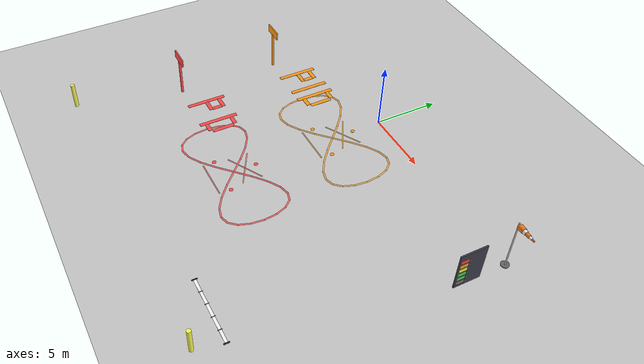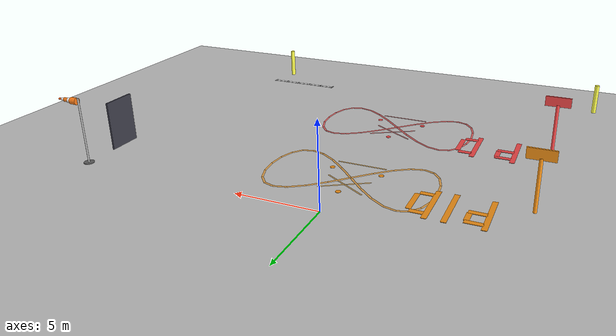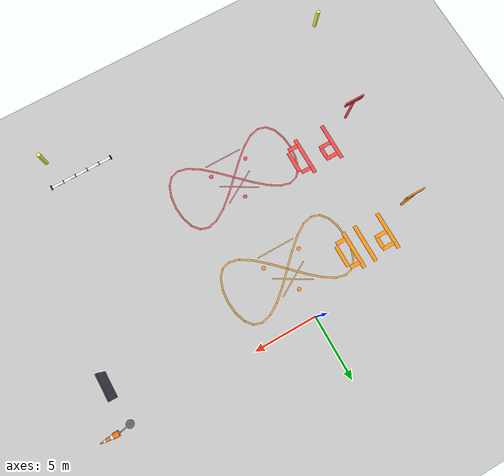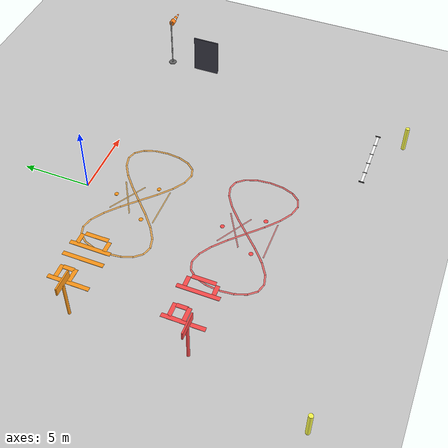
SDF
<sdf version="1.6">
 <world name="professional_formation_arena">
  <include><uri>model://arena_ground</uri></include>
  <model name="wind_indicator">
   <static>false</static>
   <pose>15 0 0 0 0 0</pose>
   <link name="base">
    <inertial>
     <mass>100</mass>
     <inertia><ixx>100</ixx><iyy>100</iyy><izz>100</izz><ixy>0</ixy><ixz>0</ixz><iyz>0</iyz></inertia>
    </inertial>
    <visual name="pole">
     <pose>0 0 2 0 0 0</pose>
     <geometry><cylinder><radius>0.05</radius><length>4.0</length></cylinder></geometry>
     <material><ambient>0.6 0.6 0.6 1</ambient><diffuse>0.7 0.7 0.7 1</diffuse></material>
    </visual>
    <visual name="base_plate">
     <pose>0 0 0.025 0 0 0</pose>
     <geometry><cylinder><radius>0.3</radius><length>0.05</length></cylinder></geometry>
     <material><ambient>0.3 0.3 0.3 1</ambient><diffuse>0.4 0.4 0.4 1</diffuse></material>
    </visual>
    <collision name="base_collision">
     <pose>0 0 0.025 0 0 0</pose>
     <geometry><cylinder><radius>0.3</radius><length>0.05</length></cylinder></geometry>
    </collision>
   </link>
   <link name="flag">
    <pose>0 0 3.8 0 0 0</pose>
    <inertial>
     <mass>0.5</mass>
     <inertia><ixx>0.01</ixx><iyy>0.1</iyy><izz>0.1</izz><ixy>0</ixy><ixz>0</ixz><iyz>0</iyz></inertia>
    </inertial>
    <visual name="sock_1">
     <pose>0.3 0 0 0 1.5708 0</pose>
     <geometry><cylinder><radius>0.2</radius><length>0.4</length></cylinder></geometry>
     <material><ambient>1 0.4 0 1</ambient><diffuse>1 0.5 0.1 1</diffuse></material>
    </visual>
    <visual name="sock_2">
     <pose>0.6 0 0 0 1.5708 0</pose>
     <geometry><cylinder><radius>0.15</radius><length>0.2</length></cylinder></geometry>
     <material><ambient>1 1 1 1</ambient><diffuse>1 1 1 1</diffuse></material>
    </visual>
    <visual name="sock_3">
     <pose>0.85 0 0 0 1.5708 0</pose>
     <geometry><cylinder><radius>0.12</radius><length>0.3</length></cylinder></geometry>
     <material><ambient>1 0.4 0 1</ambient><diffuse>1 0.5 0.1 1</diffuse></material>
    </visual>
    <visual name="sock_4">
     <pose>1.1 0 0 0 1.5708 0</pose>
     <geometry><cylinder><radius>0.08</radius><length>0.2</length></cylinder></geometry>
     <material><ambient>1 1 1 1</ambient><diffuse>1 1 1 1</diffuse></material>
    </visual>
    <visual name="sock_tip">
     <pose>1.3 0 0 0 1.5708 0</pose>
     <geometry><cylinder><radius>0.05</radius><length>0.2</length></cylinder></geometry>
     <material><ambient>1 0.3 0 1</ambient><diffuse>1 0.4 0.1 1</diffuse></material>
    </visual>
   </link>
   <joint name="flag_joint" type="revolute">
    <parent>base</parent>
    <child>flag</child>
    <axis>
     <xyz>0 0 1</xyz>
     <limit><lower>-3.15</lower><upper>3.15</upper></limit>
     <dynamics><damping>0.5</damping></dynamics>
    </axis>
   </joint>
   <plugin name="wind_flag_plugin" filename="libwind_flag_plugin.so">
    <joint_name>flag_joint</joint_name>
    <wind_topic>/wind/velocity</wind_topic>
    <update_rate>10</update_rate>
   </plugin>
  </model>
  <model name="traj_pd">
   <static>true</static>
   <link name="path">
    <visual name="seg0">
     <pose>0.488 -11.522 0.015 0 0 0.7757</pose>
     <geometry><box><size>1.366 0.12 0.015</size></box></geometry>
     <material><ambient>1 0.3 0.3 0.85</ambient><diffuse>1 0.4 0.4 0.85</diffuse></material>
    </visual>
    <visual name="seg1">
     <pose>1.444 -10.638 0.015 0 0 0.7130</pose>
     <geometry><box><size>1.240 0.12 0.015</size></box></geometry>
     <material><ambient>1 0.3 0.3 0.85</ambient><diffuse>1 0.4 0.4 0.85</diffuse></material>
    </visual>
    <visual name="seg2">
     <pose>2.346 -9.961 0.015 0 0 0.5600</pose>
     <geometry><box><size>1.020 0.12 0.015</size></box></geometry>
     <material><ambient>1 0.3 0.3 0.85</ambient><diffuse>1 0.4 0.4 0.85</diffuse></material>
    </visual>
    <visual name="seg3">
     <pose>3.157 -9.595 0.015 0 0 0.2461</pose>
     <geometry><box><size>0.781 0.12 0.015</size></box></geometry>
     <material><ambient>1 0.3 0.3 0.85</ambient><diffuse>1 0.4 0.4 0.85</diffuse></material>
    </visual>
    <visual name="seg4">
     <pose>3.846 -9.595 0.015 0 0 -0.2970</pose>
     <geometry><box><size>0.650 0.12 0.015</size></box></geometry>
     <material><ambient>1 0.3 0.3 0.85</ambient><diffuse>1 0.4 0.4 0.85</diffuse></material>
    </visual>
    <visual name="seg5">
     <pose>4.388 -9.961 0.015 0 0 -0.8648</pose>
     <geometry><box><size>0.712 0.12 0.015</size></box></geometry>
     <material><ambient>1 0.3 0.3 0.85</ambient><diffuse>1 0.4 0.4 0.85</diffuse></material>
    </visual>
    <visual name="seg6">
     <pose>4.762 -10.638 0.015 0 0 -1.2334</pose>
     <geometry><box><size>0.860 0.12 0.015</size></box></geometry>
     <material><ambient>1 0.3 0.3 0.85</ambient><diffuse>1 0.4 0.4 0.85</diffuse></material>
    </visual>
    <visual name="seg7">
     <pose>4.952 -11.522 0.015 0 0 -1.4707</pose>
     <geometry><box><size>0.962 0.12 0.015</size></box></geometry>
     <material><ambient>1 0.3 0.3 0.85</ambient><diffuse>1 0.4 0.4 0.85</diffuse></material>
    </visual>
    <visual name="seg8">
     <pose>4.952 -12.478 0.015 0 0 -1.6709</pose>
     <geometry><box><size>0.962 0.12 0.015</size></box></geometry>
     <material><ambient>1 0.3 0.3 0.85</ambient><diffuse>1 0.4 0.4 0.85</diffuse></material>
    </visual>
    <visual name="seg9">
     <pose>4.762 -13.362 0.015 0 0 -1.9082</pose>
     <geometry><box><size>0.860 0.12 0.015</size></box></geometry>
     <material><ambient>1 0.3 0.3 0.85</ambient><diffuse>1 0.4 0.4 0.85</diffuse></material>
    </visual>
    <visual name="seg10">
     <pose>4.388 -14.039 0.015 0 0 -2.2768</pose>
     <geometry><box><size>0.712 0.12 0.015</size></box></geometry>
     <material><ambient>1 0.3 0.3 0.85</ambient><diffuse>1 0.4 0.4 0.85</diffuse></material>
    </visual>
    <visual name="seg11">
     <pose>3.846 -14.405 0.015 0 0 -2.8446</pose>
     <geometry><box><size>0.650 0.12 0.015</size></box></geometry>
     <material><ambient>1 0.3 0.3 0.85</ambient><diffuse>1 0.4 0.4 0.85</diffuse></material>
    </visual>
    <visual name="seg12">
     <pose>3.157 -14.405 0.015 0 0 2.8955</pose>
     <geometry><box><size>0.781 0.12 0.015</size></box></geometry>
     <material><ambient>1 0.3 0.3 0.85</ambient><diffuse>1 0.4 0.4 0.85</diffuse></material>
    </visual>
    <visual name="seg13">
     <pose>2.346 -14.039 0.015 0 0 2.5816</pose>
     <geometry><box><size>1.020 0.12 0.015</size></box></geometry>
     <material><ambient>1 0.3 0.3 0.85</ambient><diffuse>1 0.4 0.4 0.85</diffuse></material>
    </visual>
    <visual name="seg14">
     <pose>1.444 -13.362 0.015 0 0 2.4286</pose>
     <geometry><box><size>1.240 0.12 0.015</size></box></geometry>
     <material><ambient>1 0.3 0.3 0.85</ambient><diffuse>1 0.4 0.4 0.85</diffuse></material>
    </visual>
    <visual name="seg15">
     <pose>0.488 -12.478 0.015 0 0 2.3659</pose>
     <geometry><box><size>1.366 0.12 0.015</size></box></geometry>
     <material><ambient>1 0.3 0.3 0.85</ambient><diffuse>1 0.4 0.4 0.85</diffuse></material>
    </visual>
    <visual name="seg16">
     <pose>-0.488 -11.522 0.015 0 0 2.3659</pose>
     <geometry><box><size>1.366 0.12 0.015</size></box></geometry>
     <material><ambient>1 0.3 0.3 0.85</ambient><diffuse>1 0.4 0.4 0.85</diffuse></material>
    </visual>
    <visual name="seg17">
     <pose>-1.444 -10.638 0.015 0 0 2.4286</pose>
     <geometry><box><size>1.240 0.12 0.015</size></box></geometry>
     <material><ambient>1 0.3 0.3 0.85</ambient><diffuse>1 0.4 0.4 0.85</diffuse></material>
    </visual>
    <visual name="seg18">
     <pose>-2.346 -9.961 0.015 0 0 2.5816</pose>
     <geometry><box><size>1.020 0.12 0.015</size></box></geometry>
     <material><ambient>1 0.3 0.3 0.85</ambient><diffuse>1 0.4 0.4 0.85</diffuse></material>
    </visual>
    <visual name="seg19">
     <pose>-3.157 -9.595 0.015 0 0 2.8955</pose>
     <geometry><box><size>0.781 0.12 0.015</size></box></geometry>
     <material><ambient>1 0.3 0.3 0.85</ambient><diffuse>1 0.4 0.4 0.85</diffuse></material>
    </visual>
    <visual name="seg20">
     <pose>-3.846 -9.595 0.015 0 0 -2.8446</pose>
     <geometry><box><size>0.650 0.12 0.015</size></box></geometry>
     <material><ambient>1 0.3 0.3 0.85</ambient><diffuse>1 0.4 0.4 0.85</diffuse></material>
    </visual>
    <visual name="seg21">
     <pose>-4.388 -9.961 0.015 0 0 -2.2768</pose>
     <geometry><box><size>0.712 0.12 0.015</size></box></geometry>
     <material><ambient>1 0.3 0.3 0.85</ambient><diffuse>1 0.4 0.4 0.85</diffuse></material>
    </visual>
    <visual name="seg22">
     <pose>-4.762 -10.638 0.015 0 0 -1.9082</pose>
     <geometry><box><size>0.860 0.12 0.015</size></box></geometry>
     <material><ambient>1 0.3 0.3 0.85</ambient><diffuse>1 0.4 0.4 0.85</diffuse></material>
    </visual>
    <visual name="seg23">
     <pose>-4.952 -11.522 0.015 0 0 -1.6709</pose>
     <geometry><box><size>0.962 0.12 0.015</size></box></geometry>
     <material><ambient>1 0.3 0.3 0.85</ambient><diffuse>1 0.4 0.4 0.85</diffuse></material>
    </visual>
    <visual name="seg24">
     <pose>-4.952 -12.478 0.015 0 0 -1.4707</pose>
     <geometry><box><size>0.962 0.12 0.015</size></box></geometry>
     <material><ambient>1 0.3 0.3 0.85</ambient><diffuse>1 0.4 0.4 0.85</diffuse></material>
    </visual>
    <visual name="seg25">
     <pose>-4.762 -13.362 0.015 0 0 -1.2334</pose>
     <geometry><box><size>0.860 0.12 0.015</size></box></geometry>
     <material><ambient>1 0.3 0.3 0.85</ambient><diffuse>1 0.4 0.4 0.85</diffuse></material>
    </visual>
    <visual name="seg26">
     <pose>-4.388 -14.039 0.015 0 0 -0.8648</pose>
     <geometry><box><size>0.712 0.12 0.015</size></box></geometry>
     <material><ambient>1 0.3 0.3 0.85</ambient><diffuse>1 0.4 0.4 0.85</diffuse></material>
    </visual>
    <visual name="seg27">
     <pose>-3.846 -14.405 0.015 0 0 -0.2970</pose>
     <geometry><box><size>0.650 0.12 0.015</size></box></geometry>
     <material><ambient>1 0.3 0.3 0.85</ambient><diffuse>1 0.4 0.4 0.85</diffuse></material>
    </visual>
    <visual name="seg28">
     <pose>-3.157 -14.405 0.015 0 0 0.2461</pose>
     <geometry><box><size>0.781 0.12 0.015</size></box></geometry>
     <material><ambient>1 0.3 0.3 0.85</ambient><diffuse>1 0.4 0.4 0.85</diffuse></material>
    </visual>
    <visual name="seg29">
     <pose>-2.346 -14.039 0.015 0 0 0.5600</pose>
     <geometry><box><size>1.020 0.12 0.015</size></box></geometry>
     <material><ambient>1 0.3 0.3 0.85</ambient><diffuse>1 0.4 0.4 0.85</diffuse></material>
    </visual>
    <visual name="seg30">
     <pose>-1.444 -13.362 0.015 0 0 0.7130</pose>
     <geometry><box><size>1.240 0.12 0.015</size></box></geometry>
     <material><ambient>1 0.3 0.3 0.85</ambient><diffuse>1 0.4 0.4 0.85</diffuse></material>
    </visual>
    <visual name="seg31">
     <pose>-0.488 -12.478 0.015 0 0 0.7757</pose>
     <geometry><box><size>1.366 0.12 0.015</size></box></geometry>
     <material><ambient>1 0.3 0.3 0.85</ambient><diffuse>1 0.4 0.4 0.85</diffuse></material>
    </visual>
   </link>
  </model>
  <model name="traj_pid">
   <static>true</static>
   <link name="path">
    <visual name="seg0">
     <pose>0.488 -3.522 0.015 0 0 0.7757</pose>
     <geometry><box><size>1.366 0.12 0.015</size></box></geometry>
     <material><ambient>1 0.6 0.2 0.85</ambient><diffuse>1 0.7 0.3 0.85</diffuse></material>
    </visual>
    <visual name="seg1">
     <pose>1.444 -2.638 0.015 0 0 0.7130</pose>
     <geometry><box><size>1.240 0.12 0.015</size></box></geometry>
     <material><ambient>1 0.6 0.2 0.85</ambient><diffuse>1 0.7 0.3 0.85</diffuse></material>
    </visual>
    <visual name="seg2">
     <pose>2.346 -1.961 0.015 0 0 0.5600</pose>
     <geometry><box><size>1.020 0.12 0.015</size></box></geometry>
     <material><ambient>1 0.6 0.2 0.85</ambient><diffuse>1 0.7 0.3 0.85</diffuse></material>
    </visual>
    <visual name="seg3">
     <pose>3.157 -1.595 0.015 0 0 0.2461</pose>
     <geometry><box><size>0.781 0.12 0.015</size></box></geometry>
     <material><ambient>1 0.6 0.2 0.85</ambient><diffuse>1 0.7 0.3 0.85</diffuse></material>
    </visual>
    <visual name="seg4">
     <pose>3.846 -1.595 0.015 0 0 -0.2970</pose>
     <geometry><box><size>0.650 0.12 0.015</size></box></geometry>
     <material><ambient>1 0.6 0.2 0.85</ambient><diffuse>1 0.7 0.3 0.85</diffuse></material>
    </visual>
    <visual name="seg5">
     <pose>4.388 -1.961 0.015 0 0 -0.8648</pose>
     <geometry><box><size>0.712 0.12 0.015</size></box></geometry>
     <material><ambient>1 0.6 0.2 0.85</ambient><diffuse>1 0.7 0.3 0.85</diffuse></material>
    </visual>
    <visual name="seg6">
     <pose>4.762 -2.638 0.015 0 0 -1.2334</pose>
     <geometry><box><size>0.860 0.12 0.015</size></box></geometry>
     <material><ambient>1 0.6 0.2 0.85</ambient><diffuse>1 0.7 0.3 0.85</diffuse></material>
    </visual>
    <visual name="seg7">
     <pose>4.952 -3.522 0.015 0 0 -1.4707</pose>
     <geometry><box><size>0.962 0.12 0.015</size></box></geometry>
     <material><ambient>1 0.6 0.2 0.85</ambient><diffuse>1 0.7 0.3 0.85</diffuse></material>
    </visual>
    <visual name="seg8">
     <pose>4.952 -4.478 0.015 0 0 -1.6709</pose>
     <geometry><box><size>0.962 0.12 0.015</size></box></geometry>
     <material><ambient>1 0.6 0.2 0.85</ambient><diffuse>1 0.7 0.3 0.85</diffuse></material>
    </visual>
    <visual name="seg9">
     <pose>4.762 -5.362 0.015 0 0 -1.9082</pose>
     <geometry><box><size>0.860 0.12 0.015</size></box></geometry>
     <material><ambient>1 0.6 0.2 0.85</ambient><diffuse>1 0.7 0.3 0.85</diffuse></material>
    </visual>
    <visual name="seg10">
     <pose>4.388 -6.039 0.015 0 0 -2.2768</pose>
     <geometry><box><size>0.712 0.12 0.015</size></box></geometry>
     <material><ambient>1 0.6 0.2 0.85</ambient><diffuse>1 0.7 0.3 0.85</diffuse></material>
    </visual>
    <visual name="seg11">
     <pose>3.846 -6.405 0.015 0 0 -2.8446</pose>
     <geometry><box><size>0.650 0.12 0.015</size></box></geometry>
     <material><ambient>1 0.6 0.2 0.85</ambient><diffuse>1 0.7 0.3 0.85</diffuse></material>
    </visual>
    <visual name="seg12">
     <pose>3.157 -6.405 0.015 0 0 2.8955</pose>
     <geometry><box><size>0.781 0.12 0.015</size></box></geometry>
     <material><ambient>1 0.6 0.2 0.85</ambient><diffuse>1 0.7 0.3 0.85</diffuse></material>
    </visual>
    <visual name="seg13">
     <pose>2.346 -6.039 0.015 0 0 2.5816</pose>
     <geometry><box><size>1.020 0.12 0.015</size></box></geometry>
     <material><ambient>1 0.6 0.2 0.85</ambient><diffuse>1 0.7 0.3 0.85</diffuse></material>
    </visual>
    <visual name="seg14">
     <pose>1.444 -5.362 0.015 0 0 2.4286</pose>
     <geometry><box><size>1.240 0.12 0.015</size></box></geometry>
     <material><ambient>1 0.6 0.2 0.85</ambient><diffuse>1 0.7 0.3 0.85</diffuse></material>
    </visual>
    <visual name="seg15">
     <pose>0.488 -4.478 0.015 0 0 2.3659</pose>
     <geometry><box><size>1.366 0.12 0.015</size></box></geometry>
     <material><ambient>1 0.6 0.2 0.85</ambient><diffuse>1 0.7 0.3 0.85</diffuse></material>
    </visual>
    <visual name="seg16">
     <pose>-0.488 -3.522 0.015 0 0 2.3659</pose>
     <geometry><box><size>1.366 0.12 0.015</size></box></geometry>
     <material><ambient>1 0.6 0.2 0.85</ambient><diffuse>1 0.7 0.3 0.85</diffuse></material>
    </visual>
    <visual name="seg17">
     <pose>-1.444 -2.638 0.015 0 0 2.4286</pose>
     <geometry><box><size>1.240 0.12 0.015</size></box></geometry>
     <material><ambient>1 0.6 0.2 0.85</ambient><diffuse>1 0.7 0.3 0.85</diffuse></material>
    </visual>
    <visual name="seg18">
     <pose>-2.346 -1.961 0.015 0 0 2.5816</pose>
     <geometry><box><size>1.020 0.12 0.015</size></box></geometry>
     <material><ambient>1 0.6 0.2 0.85</ambient><diffuse>1 0.7 0.3 0.85</diffuse></material>
    </visual>
    <visual name="seg19">
     <pose>-3.157 -1.595 0.015 0 0 2.8955</pose>
     <geometry><box><size>0.781 0.12 0.015</size></box></geometry>
     <material><ambient>1 0.6 0.2 0.85</ambient><diffuse>1 0.7 0.3 0.85</diffuse></material>
    </visual>
    <visual name="seg20">
     <pose>-3.846 -1.595 0.015 0 0 -2.8446</pose>
     <geometry><box><size>0.650 0.12 0.015</size></box></geometry>
     <material><ambient>1 0.6 0.2 0.85</ambient><diffuse>1 0.7 0.3 0.85</diffuse></material>
    </visual>
    <visual name="seg21">
     <pose>-4.388 -1.961 0.015 0 0 -2.2768</pose>
     <geometry><box><size>0.712 0.12 0.015</size></box></geometry>
     <material><ambient>1 0.6 0.2 0.85</ambient><diffuse>1 0.7 0.3 0.85</diffuse></material>
    </visual>
    <visual name="seg22">
     <pose>-4.762 -2.638 0.015 0 0 -1.9082</pose>
     <geometry><box><size>0.860 0.12 0.015</size></box></geometry>
     <material><ambient>1 0.6 0.2 0.85</ambient><diffuse>1 0.7 0.3 0.85</diffuse></material>
    </visual>
    <visual name="seg23">
     <pose>-4.952 -3.522 0.015 0 0 -1.6709</pose>
     <geometry><box><size>0.962 0.12 0.015</size></box></geometry>
     <material><ambient>1 0.6 0.2 0.85</ambient><diffuse>1 0.7 0.3 0.85</diffuse></material>
    </visual>
    <visual name="seg24">
     <pose>-4.952 -4.478 0.015 0 0 -1.4707</pose>
     <geometry><box><size>0.962 0.12 0.015</size></box></geometry>
     <material><ambient>1 0.6 0.2 0.85</ambient><diffuse>1 0.7 0.3 0.85</diffuse></material>
    </visual>
    <visual name="seg25">
     <pose>-4.762 -5.362 0.015 0 0 -1.2334</pose>
     <geometry><box><size>0.860 0.12 0.015</size></box></geometry>
     <material><ambient>1 0.6 0.2 0.85</ambient><diffuse>1 0.7 0.3 0.85</diffuse></material>
    </visual>
    <visual name="seg26">
     <pose>-4.388 -6.039 0.015 0 0 -0.8648</pose>
     <geometry><box><size>0.712 0.12 0.015</size></box></geometry>
     <material><ambient>1 0.6 0.2 0.85</ambient><diffuse>1 0.7 0.3 0.85</diffuse></material>
    </visual>
    <visual name="seg27">
     <pose>-3.846 -6.405 0.015 0 0 -0.2970</pose>
     <geometry><box><size>0.650 0.12 0.015</size></box></geometry>
     <material><ambient>1 0.6 0.2 0.85</ambient><diffuse>1 0.7 0.3 0.85</diffuse></material>
    </visual>
    <visual name="seg28">
     <pose>-3.157 -6.405 0.015 0 0 0.2461</pose>
     <geometry><box><size>0.781 0.12 0.015</size></box></geometry>
     <material><ambient>1 0.6 0.2 0.85</ambient><diffuse>1 0.7 0.3 0.85</diffuse></material>
    </visual>
    <visual name="seg29">
     <pose>-2.346 -6.039 0.015 0 0 0.5600</pose>
     <geometry><box><size>1.020 0.12 0.015</size></box></geometry>
     <material><ambient>1 0.6 0.2 0.85</ambient><diffuse>1 0.7 0.3 0.85</diffuse></material>
    </visual>
    <visual name="seg30">
     <pose>-1.444 -5.362 0.015 0 0 0.7130</pose>
     <geometry><box><size>1.240 0.12 0.015</size></box></geometry>
     <material><ambient>1 0.6 0.2 0.85</ambient><diffuse>1 0.7 0.3 0.85</diffuse></material>
    </visual>
    <visual name="seg31">
     <pose>-0.488 -4.478 0.015 0 0 0.7757</pose>
     <geometry><box><size>1.366 0.12 0.015</size></box></geometry>
     <material><ambient>1 0.6 0.2 0.85</ambient><diffuse>1 0.7 0.3 0.85</diffuse></material>
    </visual>
   </link>
  </model>
  <model name="post_pd">
   <static>true</static>
   <pose>-10 -12 0 0 0 0</pose>
   <link name="link">
    <visual name="pole">
     <pose>0 0 1.5 0 0 0</pose>
     <geometry><cylinder><radius>0.1</radius><length>3.0</length></cylinder></geometry>
     <material><ambient>1 0.2 0.2 1</ambient><diffuse>1 0.3 0.3 1</diffuse></material>
    </visual>
    <visual name="sign">
     <pose>0 0 3.2 0 0 0</pose>
     <geometry><box><size>1.5 0.1 0.6</size></box></geometry>
     <material><ambient>1 0.2 0.2 1</ambient><diffuse>1 0.3 0.3 1</diffuse></material>
    </visual>
   </link>
  </model>
  <model name="post_pid">
   <static>true</static>
   <pose>-10 -4 0 0 0 0</pose>
   <link name="link">
    <visual name="pole">
     <pose>0 0 1.5 0 0 0</pose>
     <geometry><cylinder><radius>0.1</radius><length>3.0</length></cylinder></geometry>
     <material><ambient>1 0.5 0 1</ambient><diffuse>1 0.6 0.1 1</diffuse></material>
    </visual>
    <visual name="sign">
     <pose>0 0 3.2 0 0 0</pose>
     <geometry><box><size>1.5 0.1 0.6</size></box></geometry>
     <material><ambient>1 0.5 0 1</ambient><diffuse>1 0.6 0.1 1</diffuse></material>
    </visual>
   </link>
  </model>
  <model name="corner_sw">
   <static>true</static>
   <pose>-12 -20 0 0 0 0</pose>
   <link name="link">
    <visual name="v">
     <pose>0 0 1 0 0 0</pose>
     <geometry><cylinder><radius>0.15</radius><length>2.0</length></cylinder></geometry>
     <material><ambient>0.9 0.9 0.2 1</ambient><diffuse>1 1 0.3 1</diffuse></material>
    </visual>
   </link>
  </model>
  <model name="corner_se">
   <static>true</static>
   <pose>12 -20 0 0 0 0</pose>
   <link name="link">
    <visual name="v">
     <pose>0 0 1 0 0 0</pose>
     <geometry><cylinder><radius>0.15</radius><length>2.0</length></cylinder></geometry>
     <material><ambient>0.9 0.9 0.2 1</ambient><diffuse>1 1 0.3 1</diffuse></material>
    </visual>
   </link>
  </model>
  <model name="scale_bar">
   <static>true</static>
   <pose>10 -18 0 0 0 0</pose>
   <link name="link">
    <visual name="bar">
     <pose>0 0 0.02 0 0 0</pose>
     <geometry><box><size>5.0 0.2 0.02</size></box></geometry>
     <material><ambient>1 1 1 1</ambient><diffuse>1 1 1 1</diffuse></material>
    </visual>
    <visual name="mark_0">
     <pose>-2.5 0 0.03 0 0 0</pose>
     <geometry><box><size>0.1 0.4 0.02</size></box></geometry>
     <material><ambient>0 0 0 1</ambient><diffuse>0.1 0.1 0.1 1</diffuse></material>
    </visual>
    <visual name="mark_5">
     <pose>2.5 0 0.03 0 0 0</pose>
     <geometry><box><size>0.1 0.4 0.02</size></box></geometry>
     <material><ambient>0 0 0 1</ambient><diffuse>0.1 0.1 0.1 1</diffuse></material>
    </visual>
    <visual name="mark_1">
     <pose>-1.5 0 0.025 0 0 0</pose>
     <geometry><box><size>0.05 0.3 0.02</size></box></geometry>
     <material><ambient>0.3 0.3 0.3 1</ambient><diffuse>0.3 0.3 0.3 1</diffuse></material>
    </visual>
    <visual name="mark_2">
     <pose>-0.5 0 0.025 0 0 0</pose>
     <geometry><box><size>0.05 0.3 0.02</size></box></geometry>
     <material><ambient>0.3 0.3 0.3 1</ambient><diffuse>0.3 0.3 0.3 1</diffuse></material>
    </visual>
    <visual name="mark_3">
     <pose>0.5 0 0.025 0 0 0</pose>
     <geometry><box><size>0.05 0.3 0.02</size></box></geometry>
     <material><ambient>0.3 0.3 0.3 1</ambient><diffuse>0.3 0.3 0.3 1</diffuse></material>
    </visual>
    <visual name="mark_4">
     <pose>1.5 0 0.025 0 0 0</pose>
     <geometry><box><size>0.05 0.3 0.02</size></box></geometry>
     <material><ambient>0.3 0.3 0.3 1</ambient><diffuse>0.3 0.3 0.3 1</diffuse></material>
    </visual>
   </link>
  </model>
  <model name="label_ground_pd">
   <static>true</static>
   <pose>-8 -12 0.02 0 0 0</pose>
   <link name="link">
    <visual name="p1">
     <pose>0 1.2 0 0 0 0</pose>
     <geometry><box><size>0.3 3.0 0.03</size></box></geometry>
     <material><ambient>1 0.2 0.2 1</ambient><diffuse>1 0.3 0.3 1</diffuse></material>
    </visual>
    <visual name="p2">
     <pose>0.6 2.2 0 0 0 0</pose>
     <geometry><box><size>1.0 0.3 0.03</size></box></geometry>
     <material><ambient>1 0.2 0.2 1</ambient><diffuse>1 0.3 0.3 1</diffuse></material>
    </visual>
    <visual name="p3">
     <pose>1.0 1.7 0 0 0 0</pose>
     <geometry><box><size>0.3 0.8 0.03</size></box></geometry>
     <material><ambient>1 0.2 0.2 1</ambient><diffuse>1 0.3 0.3 1</diffuse></material>
    </visual>
    <visual name="p4">
     <pose>0.6 1.2 0 0 0 0</pose>
     <geometry><box><size>1.0 0.3 0.03</size></box></geometry>
     <material><ambient>1 0.2 0.2 1</ambient><diffuse>1 0.3 0.3 1</diffuse></material>
    </visual>
    <visual name="d1">
     <pose>2.4 1.2 0 0 0 0</pose>
     <geometry><box><size>0.3 3.0 0.03</size></box></geometry>
     <material><ambient>1 0.2 0.2 1</ambient><diffuse>1 0.3 0.3 1</diffuse></material>
    </visual>
    <visual name="d2">
     <pose>2.9 2.2 0 0 0 0</pose>
     <geometry><box><size>0.8 0.3 0.03</size></box></geometry>
     <material><ambient>1 0.2 0.2 1</ambient><diffuse>1 0.3 0.3 1</diffuse></material>
    </visual>
    <visual name="d3">
     <pose>2.9 0.2 0 0 0 0</pose>
     <geometry><box><size>0.8 0.3 0.03</size></box></geometry>
     <material><ambient>1 0.2 0.2 1</ambient><diffuse>1 0.3 0.3 1</diffuse></material>
    </visual>
    <visual name="d4">
     <pose>3.4 1.2 0 0 0 0</pose>
     <geometry><box><size>0.3 1.7 0.03</size></box></geometry>
     <material><ambient>1 0.2 0.2 1</ambient><diffuse>1 0.3 0.3 1</diffuse></material>
    </visual>
   </link>
  </model>
  <model name="label_ground_pid">
   <static>true</static>
   <pose>-8 -4 0.02 0 0 0</pose>
   <link name="link">
    <visual name="p1">
     <pose>0 1.2 0 0 0 0</pose>
     <geometry><box><size>0.3 3.0 0.03</size></box></geometry>
     <material><ambient>1 0.5 0 1</ambient><diffuse>1 0.6 0.1 1</diffuse></material>
    </visual>
    <visual name="p2">
     <pose>0.6 2.2 0 0 0 0</pose>
     <geometry><box><size>1.0 0.3 0.03</size></box></geometry>
     <material><ambient>1 0.5 0 1</ambient><diffuse>1 0.6 0.1 1</diffuse></material>
    </visual>
    <visual name="p3">
     <pose>1.0 1.7 0 0 0 0</pose>
     <geometry><box><size>0.3 0.8 0.03</size></box></geometry>
     <material><ambient>1 0.5 0 1</ambient><diffuse>1 0.6 0.1 1</diffuse></material>
    </visual>
    <visual name="p4">
     <pose>0.6 1.2 0 0 0 0</pose>
     <geometry><box><size>1.0 0.3 0.03</size></box></geometry>
     <material><ambient>1 0.5 0 1</ambient><diffuse>1 0.6 0.1 1</diffuse></material>
    </visual>
    <visual name="i1">
     <pose>2.0 1.2 0 0 0 0</pose>
     <geometry><box><size>0.3 3.0 0.03</size></box></geometry>
     <material><ambient>1 0.5 0 1</ambient><diffuse>1 0.6 0.1 1</diffuse></material>
    </visual>
    <visual name="d1">
     <pose>3.0 1.2 0 0 0 0</pose>
     <geometry><box><size>0.3 3.0 0.03</size></box></geometry>
     <material><ambient>1 0.5 0 1</ambient><diffuse>1 0.6 0.1 1</diffuse></material>
    </visual>
    <visual name="d2">
     <pose>3.5 2.2 0 0 0 0</pose>
     <geometry><box><size>0.8 0.3 0.03</size></box></geometry>
     <material><ambient>1 0.5 0 1</ambient><diffuse>1 0.6 0.1 1</diffuse></material>
    </visual>
    <visual name="d3">
     <pose>3.5 0.2 0 0 0 0</pose>
     <geometry><box><size>0.8 0.3 0.03</size></box></geometry>
     <material><ambient>1 0.5 0 1</ambient><diffuse>1 0.6 0.1 1</diffuse></material>
    </visual>
    <visual name="d4">
     <pose>4.0 1.2 0 0 0 0</pose>
     <geometry><box><size>0.3 1.7 0.03</size></box></geometry>
     <material><ambient>1 0.5 0 1</ambient><diffuse>1 0.6 0.1 1</diffuse></material>
    </visual>
   </link>
  </model>
  <model name="formation_outline_pd">
   <static>true</static>
   <pose>0 -12 0.012 0 0 0</pose>
   <link name="link">
    <visual name="edge1">
     <pose>0 0.87 0 0 0 0.524</pose>
     <geometry><box><size>3.0 0.08 0.01</size></box></geometry>
     <material><ambient>1 0.3 0.3 0.6</ambient><diffuse>1 0.4 0.4 0.6</diffuse></material>
    </visual>
    <visual name="edge2">
     <pose>0 0.87 0 0 0 -0.524</pose>
     <geometry><box><size>3.0 0.08 0.01</size></box></geometry>
     <material><ambient>1 0.3 0.3 0.6</ambient><diffuse>1 0.4 0.4 0.6</diffuse></material>
    </visual>
    <visual name="edge3">
     <pose>0 -1.73 0 0 0 0</pose>
     <geometry><box><size>3.0 0.08 0.01</size></box></geometry>
     <material><ambient>1 0.3 0.3 0.6</ambient><diffuse>1 0.4 0.4 0.6</diffuse></material>
    </visual>
    <visual name="v1">
     <pose>0 1.73 0 0 0 0</pose>
     <geometry><cylinder><radius>0.15</radius><length>0.02</length></cylinder></geometry>
     <material><ambient>1 0.2 0.2 1</ambient><diffuse>1 0.3 0.3 1</diffuse></material>
    </visual>
    <visual name="v2">
     <pose>-1.5 -0.87 0 0 0 0</pose>
     <geometry><cylinder><radius>0.15</radius><length>0.02</length></cylinder></geometry>
     <material><ambient>1 0.2 0.2 1</ambient><diffuse>1 0.3 0.3 1</diffuse></material>
    </visual>
    <visual name="v3">
     <pose>1.5 -0.87 0 0 0 0</pose>
     <geometry><cylinder><radius>0.15</radius><length>0.02</length></cylinder></geometry>
     <material><ambient>1 0.2 0.2 1</ambient><diffuse>1 0.3 0.3 1</diffuse></material>
    </visual>
   </link>
  </model>
  <model name="formation_outline_pid">
   <static>true</static>
   <pose>0 -4 0.012 0 0 0</pose>
   <link name="link">
    <visual name="edge1">
     <pose>0 0.87 0 0 0 0.524</pose>
     <geometry><box><size>3.0 0.08 0.01</size></box></geometry>
     <material><ambient>1 0.6 0.1 0.6</ambient><diffuse>1 0.7 0.2 0.6</diffuse></material>
    </visual>
    <visual name="edge2">
     <pose>0 0.87 0 0 0 -0.524</pose>
     <geometry><box><size>3.0 0.08 0.01</size></box></geometry>
     <material><ambient>1 0.6 0.1 0.6</ambient><diffuse>1 0.7 0.2 0.6</diffuse></material>
    </visual>
    <visual name="edge3">
     <pose>0 -1.73 0 0 0 0</pose>
     <geometry><box><size>3.0 0.08 0.01</size></box></geometry>
     <material><ambient>1 0.6 0.1 0.6</ambient><diffuse>1 0.7 0.2 0.6</diffuse></material>
    </visual>
    <visual name="v1">
     <pose>0 1.73 0 0 0 0</pose>
     <geometry><cylinder><radius>0.15</radius><length>0.02</length></cylinder></geometry>
     <material><ambient>1 0.5 0 1</ambient><diffuse>1 0.6 0.1 1</diffuse></material>
    </visual>
    <visual name="v2">
     <pose>-1.5 -0.87 0 0 0 0</pose>
     <geometry><cylinder><radius>0.15</radius><length>0.02</length></cylinder></geometry>
     <material><ambient>1 0.5 0 1</ambient><diffuse>1 0.6 0.1 1</diffuse></material>
    </visual>
    <visual name="v3">
     <pose>1.5 -0.87 0 0 0 0</pose>
     <geometry><cylinder><radius>0.15</radius><length>0.02</length></cylinder></geometry>
     <material><ambient>1 0.5 0 1</ambient><diffuse>1 0.6 0.1 1</diffuse></material>
    </visual>
   </link>
  </model>
  <model name="wind_scale_panel">
   <static>true</static>
   <pose>15 -3 0 0 0 0</pose>
   <link name="link">
    <visual name="bg">
     <pose>0 0 1.5 0 0 0</pose>
     <geometry><box><size>0.1 2.0 3.0</size></box></geometry>
     <material><ambient>0.2 0.2 0.25 1</ambient><diffuse>0.25 0.25 0.3 1</diffuse></material>
    </visual>
    <visual name="bar0">
     <pose>0.06 -0.6 0.4 0 0 0</pose>
     <geometry><box><size>0.02 0.6 0.3</size></box></geometry>
     <material><ambient>0.4 0.4 0.4 1</ambient><diffuse>0.5 0.5 0.5 1</diffuse></material>
    </visual>
    <visual name="bar1">
     <pose>0.06 -0.6 0.8 0 0 0</pose>
     <geometry><box><size>0.02 0.6 0.3</size></box></geometry>
     <material><ambient>0.3 0.7 0.3 1</ambient><diffuse>0.4 0.8 0.4 1</diffuse></material>
    </visual>
    <visual name="bar2">
     <pose>0.06 -0.6 1.2 0 0 0</pose>
     <geometry><box><size>0.02 0.6 0.3</size></box></geometry>
     <material><ambient>0.2 0.8 0.2 1</ambient><diffuse>0.3 0.9 0.3 1</diffuse></material>
    </visual>
    <visual name="bar3">
     <pose>0.06 -0.6 1.6 0 0 0</pose>
     <geometry><box><size>0.02 0.6 0.3</size></box></geometry>
     <material><ambient>0.9 0.9 0.2 1</ambient><diffuse>1 1 0.3 1</diffuse></material>
    </visual>
    <visual name="bar4">
     <pose>0.06 -0.6 2.0 0 0 0</pose>
     <geometry><box><size>0.02 0.6 0.3</size></box></geometry>
     <material><ambient>1 0.6 0.1 1</ambient><diffuse>1 0.7 0.2 1</diffuse></material>
    </visual>
    <visual name="bar5">
     <pose>0.06 -0.6 2.4 0 0 0</pose>
     <geometry><box><size>0.02 0.6 0.3</size></box></geometry>
     <material><ambient>1 0.2 0.2 1</ambient><diffuse>1 0.3 0.3 1</diffuse></material>
    </visual>
    <visual name="m0">
     <pose>0.06 -0.15 0.25 0 0 0</pose>
     <geometry><box><size>0.02 0.1 0.02</size></box></geometry>
     <material><ambient>1 1 1 1</ambient><diffuse>1 1 1 1</diffuse></material>
    </visual>
    <visual name="m1">
     <pose>0.06 -0.15 0.65 0 0 0</pose>
     <geometry><box><size>0.02 0.1 0.02</size></box></geometry>
     <material><ambient>1 1 1 1</ambient><diffuse>1 1 1 1</diffuse></material>
    </visual>
    <visual name="m2">
     <pose>0.06 -0.15 1.05 0 0 0</pose>
     <geometry><box><size>0.02 0.1 0.02</size></box></geometry>
     <material><ambient>1 1 1 1</ambient><diffuse>1 1 1 1</diffuse></material>
    </visual>
    <visual name="m3">
     <pose>0.06 -0.15 1.45 0 0 0</pose>
     <geometry><box><size>0.02 0.1 0.02</size></box></geometry>
     <material><ambient>1 1 1 1</ambient><diffuse>1 1 1 1</diffuse></material>
    </visual>
    <visual name="m4">
     <pose>0.06 -0.15 1.85 0 0 0</pose>
     <geometry><box><size>0.02 0.1 0.02</size></box></geometry>
     <material><ambient>1 1 1 1</ambient><diffuse>1 1 1 1</diffuse></material>
    </visual>
    <visual name="m5">
     <pose>0.06 -0.15 2.25 0 0 0</pose>
     <geometry><box><size>0.02 0.1 0.02</size></box></geometry>
     <material><ambient>1 1 1 1</ambient><diffuse>1 1 1 1</diffuse></material>
    </visual>
   </link>
  </model>
 </world>
</sdf>
